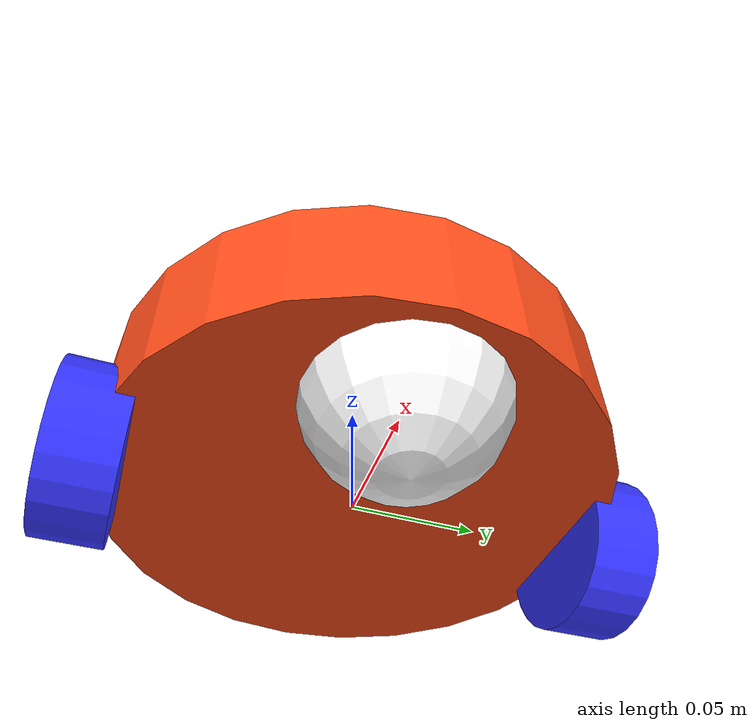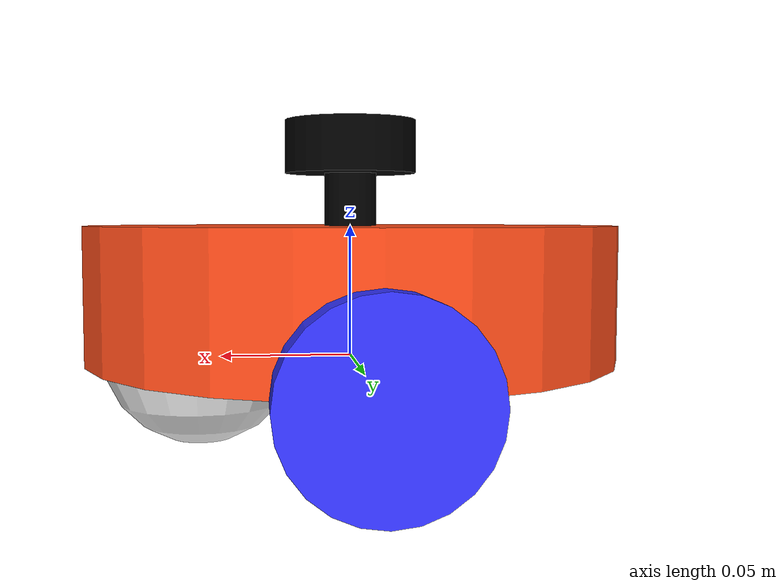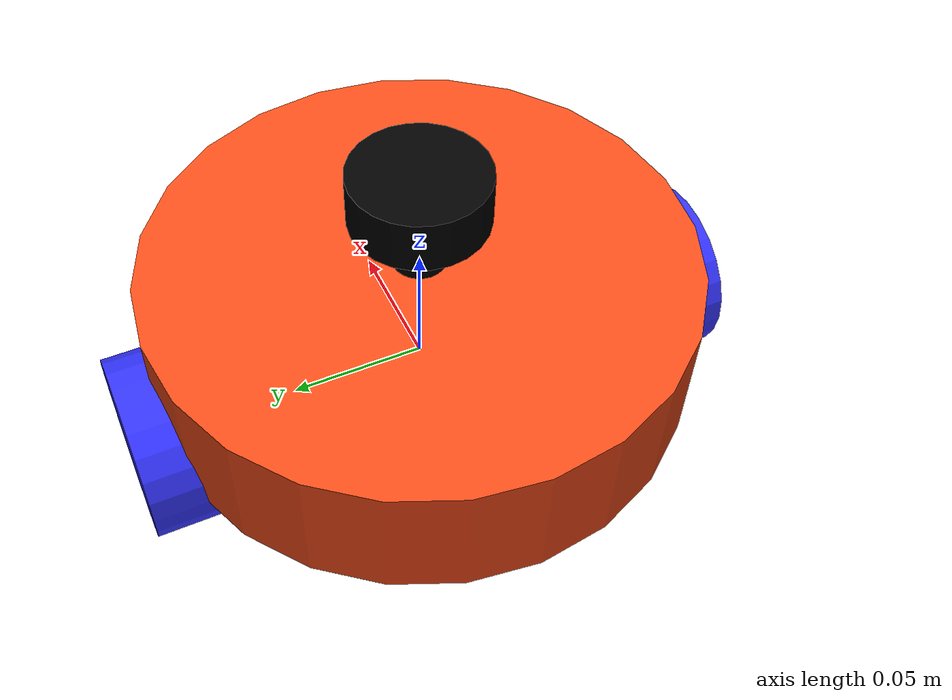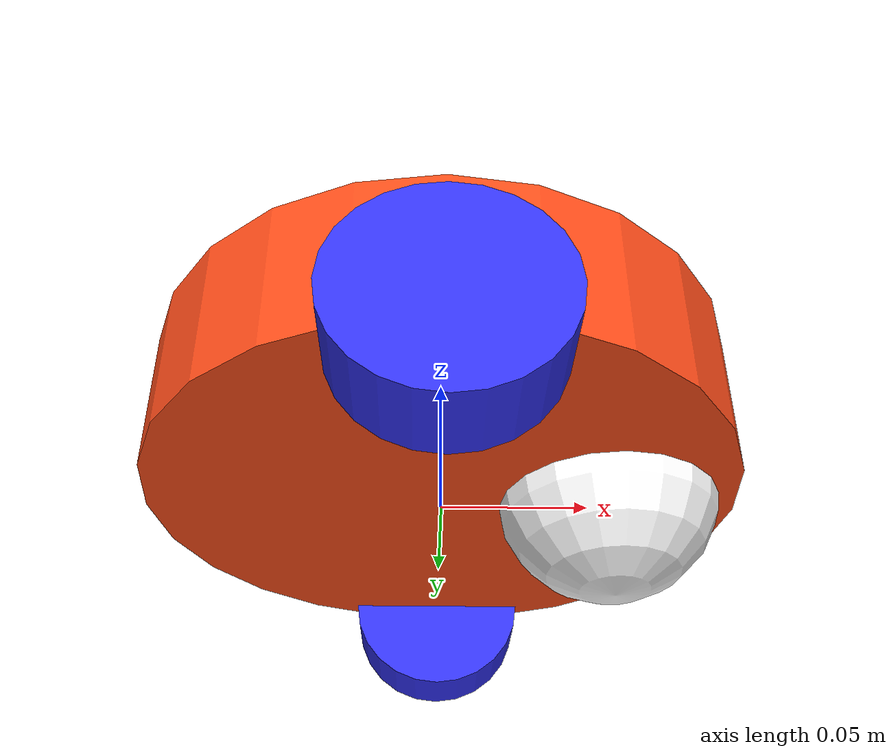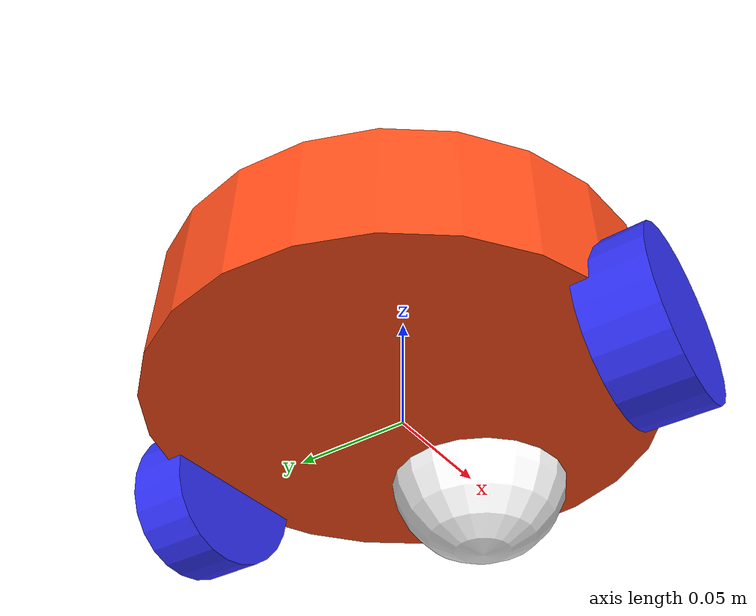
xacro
<?xml version="1.0"?>
<robot xmlns:xacro="http://www.ros.org/wiki/xacro"  name="robot">

    <xacro:arg name="use_ros2_control" default="true"/>
    <xacro:arg name="sim_mode" default="false"/>

    <xacro:include filename="robot_core.xacro" />
    <xacro:include filename="gazebo_control.xacro" />

    <xacro:if value="$(arg use_ros2_control)">
        <xacro:include filename="ros2_control.xacro" />
    </xacro:if>
    <xacro:unless value="$(arg use_ros2_control)">
        <xacro:include filename="gazebo_control.xacro" />
    </xacro:unless>
    <xacro:include filename="lidar.xacro" />

</robot>

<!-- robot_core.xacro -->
<robot xmlns:xacro="http://www.ros.org/wiki/xacro" >

    <xacro:include filename="inertial_macros.xacro"/>

    <xacro:property name="chassis_radius" value="0.1"/>
    <xacro:property name="chassis_thickness" value="0.05"/>
    <xacro:property name="chassis_mass" value="10.0"/>
    <!-- Separator -->
    <xacro:property name="wheel_radius" value="0.033"/>
    <xacro:property name="wheel_thickness" value="0.026"/>
    <xacro:property name="wheel_mass" value="50.0"/>
    <xacro:property name="caster_wheel_radius" value="${wheel_radius+0.005}"/>
    <xacro:property name="caster_wheel_mass" value="50.0"/>
    <xacro:property name="caster_wheel_offset_x" value="${chassis_radius - caster_wheel_radius - 0.005}"/>
    <xacro:property name="caster_wheel_offset_z" value="${caster_wheel_radius/7}"/>

    <material name="white">
        <color rgba="1 1 1 1" />
    </material>

    <material name="orange">
        <color rgba="1 0.3 0.1 1"/>
    </material>

    <material name="blue">
        <color rgba="0.2 0.2 1 1"/>
    </material>

    <material name="black">
        <color rgba="0 0 0 1"/>
    </material>

    <material name="red">
        <color rgba="1 0 0 1"/>
    </material>

    <!-- BASE LINK -->

    <link name="base_link">
    </link>

    <!-- CHASSIS LINK -->

    <joint name="chassis_joint" type="fixed">
        <parent link="base_link"/>
        <child link="chassis"/>
        <origin xyz="0 0 0"/>
    </joint>

    <link name="chassis">
        <visual>
            <origin xyz="0 0 ${chassis_radius/4}"/>
            <geometry>
                <cylinder radius="${chassis_radius}" length="${chassis_thickness}"/>
            </geometry>
            <material name="orange"/>
        </visual>
        <collision>
            <origin xyz="0 0 ${chassis_radius/2}"/>
            <geometry>
                <cylinder radius="${chassis_radius}" length="${chassis_thickness}"/>
            </geometry>
        </collision>
        <xacro:inertial_cylinder mass="${chassis_mass}" length="${chassis_thickness}" radius="${chassis_radius}">
            <origin xyz="0 0 0" rpy="0 0 0"/>
        </xacro:inertial_cylinder>
    </link>

    <gazebo reference="chassis">
        <material>Gazebo/Orange</material>
    </gazebo>

    <!-- LEFT WHEEL LINK -->

    <joint name="left_wheel_joint" type="continuous">
        <parent link="chassis"/>
        <child link="left_wheel"/>
        <origin xyz="0 ${chassis_radius} 0" rpy="-${pi/2} 0 0" />
        <axis xyz="0 0 1"/>
    </joint>

    <link name="left_wheel">
        <visual>
            <geometry>
                <cylinder radius="${wheel_radius}" length="${wheel_thickness}"/>
            </geometry>
            <material name="blue"/>
        </visual>
        <collision>
            <geometry>
                <sphere radius="${wheel_radius}"/>
            </geometry>
        </collision>
        <xacro:inertial_cylinder mass="${wheel_mass}" length="${wheel_thickness}" radius="${wheel_radius}">
            <origin xyz="0 0 0" rpy="0 0 0"/>
        </xacro:inertial_cylinder>
    </link>

    <gazebo reference="left_wheel">
        <material>Gazebo/Blue</material>
    </gazebo>

    <!-- RIGHT WHEEL LINK -->

    <joint name="right_wheel_joint" type="continuous">
        <parent link="chassis"/>
        <child link="right_wheel"/>
        <origin xyz="0 ${-chassis_radius} 0" rpy="${pi/2} 0 0" />
        <axis xyz="0 0 -1"/>
    </joint>

    <link name="right_wheel">
        <visual>
            <geometry>
                <cylinder radius="${wheel_radius}" length="${wheel_thickness}"/>
            </geometry>
            <material name="blue"/>
        </visual>
        <collision>
            <geometry>
                <sphere radius="${wheel_radius}"/>
            </geometry>
        </collision>
        <xacro:inertial_cylinder mass="${wheel_mass}" length="${wheel_thickness}" radius="${wheel_radius}">
            <origin xyz="0 0 0" rpy="0 0 0"/>
        </xacro:inertial_cylinder>
    </link>

    <gazebo reference="right_wheel">
        <material>Gazebo/Blue</material>
    </gazebo>

    <!-- CASTER WHEEL LINK -->

    <joint name="caster_wheel_joint" type="fixed">
        <parent link="chassis"/>
        <child link="caster_wheel"/>
        <origin xyz="${caster_wheel_offset_x} 0 ${caster_wheel_offset_z}"/>
    </joint>

    <link name="caster_wheel">
        <visual>
            <geometry>
                <sphere radius="${caster_wheel_radius}"/>
            </geometry>
            <material name="white"/>
        </visual>
        <collision>
            <geometry>
                <sphere radius="${caster_wheel_radius}"/>
            </geometry>
        </collision>
        <xacro:inertial_sphere mass="${caster_wheel_mass}" radius="${caster_wheel_radius}">
            <origin xyz="0 0 0" rpy="0 0 0"/>
        </xacro:inertial_sphere>
    </link>

    <gazebo reference="caster_wheel">
        <material>Gazebo/White</material>
        <mu1 value="0.001"/>
        <mu2 value="0.001"/>
    </gazebo>

</robot>

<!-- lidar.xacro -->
<robot xmlns:xacro="http://www.ros.org/wiki/xacro">

    <xacro:property name="laser_foot_radius" value="0.01" />
    <xacro:property name="laser_foot_thickness" value="0.03" />
    <xacro:property name="laser_radius" value="0.025" />
    <xacro:property name="laser_thickness" value="0.02" />

    <joint name="laser_joint" type="fixed">
        <parent link="chassis" />
        <child link="laser_frame" />
        <origin xyz="0 0 ${chassis_thickness + laser_foot_thickness}" rpy="0 0 0" />
    </joint>

    <link name="laser_frame">
        <visual>
            <geometry>
                <cylinder radius="${laser_radius}" length="${laser_thickness}" />
            </geometry>
            <material name="black" />
        </visual>
        <visual>
            <origin xyz="0 0 ${-laser_thickness}" />
            <geometry>
                <cylinder radius="${laser_foot_radius}" length="${laser_foot_thickness}" />
            </geometry>
            <material name="black" />
        </visual>
        <collision>
            <geometry>
                <cylinder radius="${laser_radius}" length="${laser_thickness}" />
            </geometry>
        </collision>
        <xacro:inertial_cylinder mass="0.1" length="${laser_thickness}" radius="${laser_radius}">
            <origin xyz="0 0 0" rpy="0 0 0" />
        </xacro:inertial_cylinder>
    </link>

    <gazebo reference="laser_frame">
        <material>Gazebo/Black</material>

        <sensor name="laser" type="ray">
            <pose> 0 0 0 0 0 0 </pose>
            <visualize>false</visualize>
            <update_rate>20</update_rate>
            <always_on>1</always_on>
            <ray>
                <scan>
                    <horizontal>
                        <samples>360</samples>
                        <resolution>1</resolution>
                        <min_angle>-1.570796</min_angle>
                        <max_angle>4.712388</max_angle>
                    </horizontal>
                </scan>
                <range>
                    <min>${chassis_radius * 1}</min>
                    <max>${chassis_radius * 12}</max>
                    <resolution>0.01</resolution>
                </range>
                <noise>
                    <type>gaussian</type>
                    <mean>0.0</mean>
                    <stddev>0.01</stddev>
                </noise>
            </ray>
            <plugin name="laser_controller" filename="libgazebo_ros_ray_sensor.so">
                <ros>
                    <argument>~/out:=lidar_scan</argument>
                </ros>
                <output_type>sensor_msgs/LaserScan</output_type>
                <frame_name>laser_frame</frame_name>
            </plugin>
        </sensor>
    </gazebo>
</robot>
